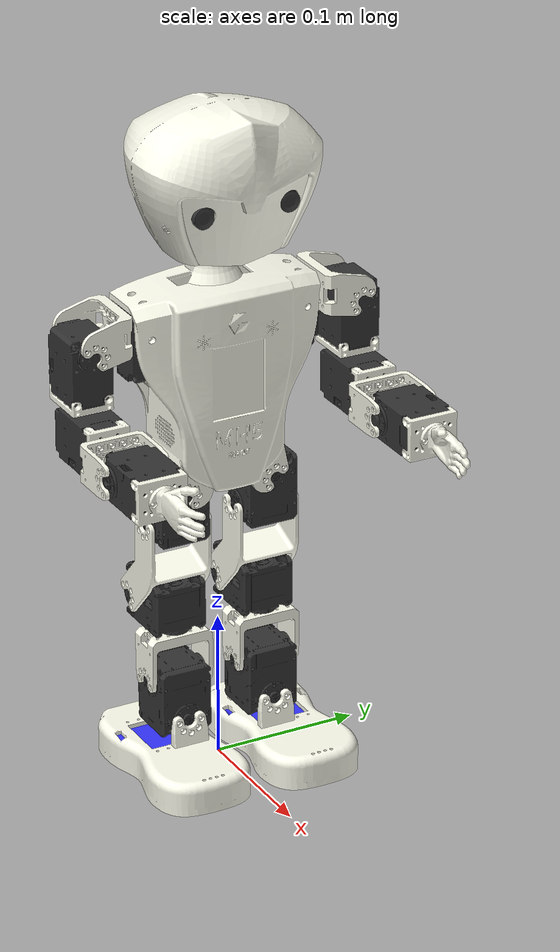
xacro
<?xml version="1.0" ?>
<robot xmlns:xacro="http://ros.org/wiki/xacro" name="mh5_robot">

    <xacro:include filename="$(find mh5_description)/urdf/mh5_head_revC.xacro"/>
    <xacro:include filename="$(find mh5_description)/urdf/mh5_arm_revE.xacro"/>
    <xacro:include filename="$(find mh5_description)/urdf/mh5_leg_revE.xacro"/>

    <xacro:macro name="material_ivory">
        <material name="ivory">
            <color rgba="1 1 0.94 1"/>
        </material>
    </xacro:macro>

    <xacro:macro name="material_black">
        <material name="black">
            <color rgba="0.2 0.2 0.2 1"/>
        </material>
    </xacro:macro>

    <link name="base_link"/>

    <link name="chest">
        <visual>
            <origin rpy="0 0 0" xyz="0 0 0"/>
            <geometry>
                <mesh filename="package://mh5_description/meshes/chest_revE.stl"/>
            </geometry>
            <xacro:material_ivory/>
        </visual>
        <collision>
            <origin rpy="0 0 0" xyz="0 0 0"/>
            <geometry>
                <mesh filename="package://mh5_description/meshes/chest_revE.stl"/>
            </geometry>
        </collision>
        <inertial>
            <mass value="0.139810"/>
            <inertia
                ixx="0.000416293"
                iyy="0.000348572"
                izz="0.000198378"
                ixy="0.000000012"
                ixz="0.000012260"
                iyz="0.000000017" />
        </inertial>
    </link>

    <joint name="chest_fixed" type="fixed">
        <parent link="base_link"/>
        <child link="chest"/>
        <origin xyz="0 0 0.203" rpy="0 0 0"/>
    </joint>

    <xacro:mh5_head parent="chest" />
    <xacro:mh5_arm side="left" parent="chest" />
    <xacro:mh5_arm side="right" parent="chest" />
    <xacro:mh5_leg side="left" parent="chest" />
    <xacro:mh5_leg side="right" parent="chest" />

    <gazebo>
        <plugin name="gazebo_ros_control" filename="libgazebo_ros_control.so">
            <robotNamespace>/mh5_robot</robotNamespace>
        </plugin>

    </gazebo>

</robot>

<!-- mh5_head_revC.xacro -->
<robot xmlns:xacro="http://ros.org/wiki/xacro">

    <xacro:include filename="$(find mh5_description)/urdf/mh5_transmission.xacro"/>

    <xacro:macro name="mh5_head" params="parent">

        <joint name="head_y" type="revolute">
            <axis xyz="-1 0 0"/>
            <parent link="${parent}"/>
            <child link="head_servo"/>
            <origin xyz="-0.007076 0 ${0.191046+0.019}" rpy="0 ${pi/2} 0"/>
            <limit lower="-${pi/2}" upper="${pi/2}" effort="1.0" velocity="${2*pi}"/>
        </joint>
        <xacro:insert_transmission name="head_y"/>

        <link name="head_servo">
            <visual>
                <origin rpy="0 0 0" xyz="0 0 0"/>
                <geometry>
                    <mesh filename="package://mh5_description/meshes/2XL430_1_idle_revC.stl"/>
                </geometry>
                <xacro:material_black/>
            </visual>
            <collision>
                <origin rpy="0 0 0" xyz="0 0 0"/>
                <geometry>
                    <mesh filename="package://mh5_description/meshes/2XL430_1_idle_revC.stl"/>
                </geometry>
            </collision>
            <inertial>
                <mass value="0.098"/>
                <inertia
                    ixx="0.000026983"
                    iyy="0.000026983"
                    izz="0.000019139"
                    ixy="0.000000654"
                    ixz="-0.000000001"
                    iyz="0.000000002" />
            </inertial>
        </link>

        <joint name="head_p" type="revolute">
            <axis xyz="0 -1 0"/>
            <parent link="head_servo"/>
            <child link="head_frame"/>
            <origin xyz="0 0 -0.024" rpy="0 -${pi/2} 0"/>
            <limit lower="-${pi/9}" upper="${pi/4}" effort="1.0" velocity="${2*pi}"/>
        </joint>
        <xacro:insert_transmission name="head_p"/>

        <link name="head_frame">
            <visual>
                <origin rpy="0 0 0" xyz="0 0 0"/>
                <geometry>
                    <mesh filename="package://mh5_description/meshes/head_revC.stl"/>
                </geometry>
                <xacro:material_ivory/>
            </visual>
            <collision>
                <origin rpy="0 0 0" xyz="0 0 0"/>
                <geometry>
                    <mesh filename="package://mh5_description/meshes/head_revC.stl"/>
                </geometry>
            </collision>
            <inertial>
                <mass value="0.090046"/>
                <inertia
                    ixx="0.000188152"
                    iyy="0.000158702"
                    izz="0.000215838"
                    ixy="0.000000008"
                    ixz="-0.000000404"
                    iyz="-0.000000005" />
            </inertial>
        </link>

        <joint name="left_camera_fixed" type="fixed">
            <parent link="head_frame"/>
            <child link="left_camera"/>
            <origin xyz="0.05715 0.030 -0.009196" rpy="0 0 0"/>
        </joint>

        <link name="left_camera">
            <visual>
                <origin rpy="0 0 0" xyz="0 0 0"/>
                <geometry>
                    <mesh filename="package://mh5_description/meshes/camera_revC.stl"/>
                </geometry>
                <xacro:material_black/>
            </visual>
            <collision>
                <origin rpy="0 0 0" xyz="0 0 0"/>
                <geometry>
                    <mesh filename="package://mh5_description/meshes/camera_revC.stl"/>
                </geometry>
            </collision>
            <inertial>
                <mass value="0.004582"/>
                <inertia
                    ixx="0.000000405"
                    iyy="0.000000374"
                    izz="0.000000314"
                    ixy="-0.000000001"
                    ixz="-0.000000034"
                    iyz="-0.000000003" />
            </inertial>
        </link>

        <joint name="right_camera_fixed" type="fixed">
            <parent link="head_frame"/>
            <child link="right_camera"/>
            <origin xyz="0.05715 -0.030 -0.009196" rpy="0 0 0"/>
        </joint>

        <link name="right_camera">
            <visual>
                <origin rpy="0 0 0" xyz="0 0 0"/>
                <geometry>
                    <mesh filename="package://mh5_description/meshes/camera_revC.stl"/>
                </geometry>
                <xacro:material_black/>
            </visual>
            <collision>
                <origin rpy="0 0 0" xyz="0 0 0"/>
                <geometry>
                    <mesh filename="package://mh5_description/meshes/camera_revC.stl"/>
                </geometry>
            </collision>
            <inertial>
                <mass value="0.004582"/>
                <inertia
                    ixx="0.000000405"
                    iyy="0.000000374"
                    izz="0.000000314"
                    ixy="-0.000000001"
                    ixz="-0.000000034"
                    iyz="-0.000000003" />
            </inertial>
        </link>

    </xacro:macro>

</robot>

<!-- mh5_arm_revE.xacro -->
<robot xmlns:xacro="http://ros.org/wiki/xacro">

    <xacro:macro name="mh5_arm" params="side parent">

        <xacro:property name="short_side" value="${side[0]}"/>
        <xacro:if value="${short_side == 'l'}">
            <xacro:property name="factor" value = "1.0"/>
        </xacro:if>
        <xacro:if value="${short_side == 'r'}">
            <xacro:property name="factor" value = "-1.0"/>
        </xacro:if>

        <xacro:property name="effort" value="1.0"/>
        <xacro:property name="velocity" value="${2*pi}"/>

        <joint name="${side}_shoulder_fixed" type="fixed">
            <parent link="${parent}"/>
            <child link="${side}_shoulder_servo"/>
            <origin xyz="0 ${factor*0.0495} 0.11875" rpy="0 0 ${factor*pi/2}"/>
        </joint>

        <link name="${side}_shoulder_servo">
            <visual>
                <origin rpy="0 0 0" xyz="0 0 0"/>
                <geometry>
                    <mesh filename="package://mh5_description/meshes/XL430_no_idle_revC.stl"/>
                </geometry>
                <xacro:material_black/>
            </visual>
            <collision>
                <origin rpy="0 0 0" xyz="0 0 0"/>
                <geometry>
                    <mesh filename="package://mh5_description/meshes/XL430_no_idle_revC.stl"/>
                </geometry>
            </collision>
            <inertial>
                <mass value="0.057"/>
                <inertia
                    ixx="0.000013720"
                    iyy="0.000015234"
                    izz="0.000008769"
                    ixy="0.000000007"
                    ixz="-0.000000355"
                    iyz="0.000000006" />
            </inertial>
        </link>

        <joint name="${short_side}_sho_p" type="revolute">
            <axis xyz="0 0 ${factor}"/>
            <parent link="${side}_shoulder_servo"/>
            <child link="${side}_shoulder_frame"/>
            <origin xyz="0.019 0 0" rpy="0 -${pi/2} 0"/>
            <limit lower="-${pi/2}" upper="${pi}" effort="${effort}" velocity="${velocity}"/>
        </joint>
        <xacro:insert_transmission name="${short_side}_sho_p"/>

        <link name="${side}_shoulder_frame">
            <visual>
                <origin rpy="0 0 0" xyz="0 0 0"/>
                <geometry>
                    <mesh filename="package://mh5_description/meshes/frame04_revE.stl"/>
                </geometry>
                <material name="ivory"/>
            </visual>
            <collision>
                <origin rpy="0 0 0" xyz="0 0 0"/>
                <geometry>
                    <mesh filename="package://mh5_description/meshes/frame04_revE.stl"/>
                </geometry>
            </collision>
            <inertial>
                <mass value="0.0083"/>
                <inertia
                    ixx="0.000003285"
                    iyy="0.000001666"
                    izz="0.000003578"
                    ixy="0.000000000"
                    ixz="-0.000000402"
                    iyz="0.000000000" />
            </inertial>
        </link>

        <joint name="${short_side}_sho_r" type="revolute">
            <axis xyz="${factor} 0 0"/>
            <parent link="${side}_shoulder_frame"/>
            <child link="${side}_arm_servo"/>
            <origin xyz="-0.008 0 -0.027" rpy="${-factor*pi/2} 0 ${-factor*pi/2}"/>
            <limit lower="0" upper="${pi}" effort="${effort}" velocity="${velocity}"/>
        </joint>
        <xacro:insert_transmission name="${short_side}_sho_r"/>

        <link name="${side}_arm_servo">
            <visual>
                <origin rpy="0 0 0" xyz="0 0 0"/>
                <geometry>
                    <mesh filename="package://mh5_description/meshes/XL430_idle_revC.stl"/>
                </geometry>
                <material name="black"/>
            </visual>
            <collision>
                <origin rpy="0 0 0" xyz="0 0 0"/>
                <geometry>
                    <mesh filename="package://mh5_description/meshes/XL430_idle_revC.stl"/>
                </geometry>
            </collision>
            <inertial>
                <mass value="0.057"/>
                <inertia
                    ixx="0.000013720"
                    iyy="0.000015234"
                    izz="0.000008769"
                    ixy="0.000000007"
                    ixz="-0.000000355"
                    iyz="0.000000006" />
            </inertial>
        </link>

        <joint name="${side}_arm_fixed" type="fixed">
            <parent link="${side}_arm_servo"/>
            <child link="${side}_arm_frame"/>
            <origin xyz="0 0 -0.03925" rpy="0 0 ${pi/2}"/>
        </joint>

        <link name="${side}_arm_frame">
            <visual>
                <origin rpy="0 0 0" xyz="0 0 0"/>
                <geometry>
                    <mesh filename="package://mh5_description/meshes/frame03_revC.stl"/>
                </geometry>
                <material name="ivory"/>
            </visual>
            <collision>
                <origin rpy="0 0 0" xyz="0 0 0"/>
                <geometry>
                    <mesh filename="package://mh5_description/meshes/frame03_revC.stl"/>
                </geometry>
            </collision>
            <inertial>
                <mass value="0.0028"/>
                <inertia
                    ixx="0.000000349"
                    iyy="0.000000241"
                    izz="0.000000567"
                    ixy="0"
                    ixz="0"
                    iyz="0" />
            </inertial>
        </link>

        <joint name="${short_side}_elb_y" type="revolute">
            <axis xyz="${factor} 0 0"/>
            <parent link="${side}_arm_frame"/>
            <child link="${side}_elbow_servo"/>
            <origin xyz="0 0 -0.019" rpy="0 -${pi/2} -${pi/2}"/>
            <limit lower="${-pi/2}" upper="${pi/2}" effort="${effort}" velocity="${velocity}"/>
        </joint>
        <xacro:insert_transmission name="${short_side}_elb_y"/>

        <link name="${side}_elbow_servo">
            <visual>
                <origin rpy="0 0 0" xyz="0 0 0"/>
                <geometry>
                    <mesh filename="package://mh5_description/meshes/XL430_no_idle_revC.stl"/>
                </geometry>
                <xacro:material_black/>
            </visual>
            <collision>
                <origin rpy="0 0 0" xyz="0 0 0"/>
                <geometry>
                    <mesh filename="package://mh5_description/meshes/XL430_no_idle_revC.stl"/>
                </geometry>
            </collision>
            <inertial>
                <mass value="0.057"/>
                <inertia
                    ixx="0.000013720"
                    iyy="0.000015234"
                    izz="0.000008769"
                    ixy="0.000000007"
                    ixz="-0.000000355"
                    iyz="0.000000006" />
            </inertial>
        </link>

        <joint name="${side}_lower_arm_fixed" type="fixed">
            <parent link="${side}_elbow_servo"/>
            <child link="${side}_lower_arm_frame"/>
            <origin xyz="0 0 0" rpy="0 0 0"/>
        </joint>

        <link name="${side}_lower_arm_frame">
            <visual>
                <origin rpy="0 0 0" xyz="0 0 -0.03925"/>
                <geometry>
                    <mesh filename="package://mh5_description/meshes/lower_arm.stl"/>
                </geometry>
                <material name="ivory"/>
            </visual>
            <collision>
                <origin rpy="0 0 0" xyz="0 0 -0.03925"/>
                <geometry>
                    <mesh filename="package://mh5_description/meshes/lower_arm.stl"/>
                </geometry>
            </collision>
            <inertial>
                <mass value="0.0011"/>
                <inertia
                    ixx="0.000003873"
                    iyy="0.000002140"
                    izz="0.000003349"
                    ixy="0.000000000"
                    ixz="0.000000004"
                    iyz="0.000000000" />
            </inertial>
        </link>

        <joint name="${short_side}_elb_p" type="revolute">
            <axis xyz="${factor} 0 0"/>
            <parent link="${side}_lower_arm_frame"/>
            <child link="${side}_lower_arm_servo"/>
            <origin xyz="0 0 -0.07325" rpy="0 0 ${-factor*pi/2}"/>
            <limit lower="${-0.6*pi}" upper="${0.6*pi}" effort="${effort}" velocity="${velocity}"/>
        </joint>
        <xacro:insert_transmission name="${short_side}_elb_p"/>

        <link name="${side}_lower_arm_servo">
            <visual>
                <origin rpy="0 0 0" xyz="0 0 0"/>
                <geometry>
                    <mesh filename="package://mh5_description/meshes/XL430_idle_revC.stl"/>
                </geometry>
                <material name="black"/>
            </visual>
            <collision>
                <origin rpy="0 0 0" xyz="0 0 0"/>
                <geometry>
                    <mesh filename="package://mh5_description/meshes/XL430_idle_revC.stl"/>
                </geometry>
            </collision>
            <inertial>
                <mass value="0.057"/>
                <inertia
                    ixx="0.000013720"
                    iyy="0.000015234"
                    izz="0.000008769"
                    ixy="0.000000007"
                    ixz="-0.000000355"
                    iyz="0.000000006" />
            </inertial>
        </link>

        <joint name="${side}_hand_fixed" type="fixed">
            <parent link="${side}_lower_arm_servo"/>
            <child link="${side}_hand"/>
            <origin xyz="0 0 -0.03925" rpy="0 0 ${factor*pi/2}"/>
        </joint>

        <xacro:if value="${short_side == 'l'}">
            <xacro:property name="hand_stl" value = "package://mh5_description/meshes/left_hand_revB.stl"/>
        </xacro:if>
        <xacro:if value="${short_side == 'r'}">
            <xacro:property name="hand_stl" value = "package://mh5_description/meshes/right_hand_revB.stl"/>
        </xacro:if>

        <link name="${side}_hand">
            <visual>
                <origin rpy="0 0 0" xyz="0 0 0"/>
                <geometry>
                    <mesh filename="${hand_stl}"/>
                </geometry>
                <material name="ivory"/>
            </visual>
            <collision>
                <origin rpy="0 0 0" xyz="0 0 0"/>
                <geometry>
                    <mesh filename="${hand_stl}"/>
                </geometry>
            </collision>
            <inertial>
                <mass value="0.0096"/>
                <inertia
                    ixx="0.000002177"
                    iyy="0.000002288"
                    izz="0.000000936"
                    ixy="${factor*0.000000053}"
                    ixz="0.000000020"
                    iyz="${factor*-0.000000052}" />
            </inertial>
        </link>

    </xacro:macro>

</robot>

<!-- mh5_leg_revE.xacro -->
<robot xmlns:xacro="http://ros.org/wiki/xacro">

    <xacro:include filename="$(find mh5_description)/urdf/mh5_transmission.xacro"/>

    <xacro:macro name="mh5_leg" params="side parent">

        <xacro:property name="short_side" value="${side[0]}"/>
        <xacro:if value="${short_side == 'l'}">
            <xacro:property name="factor" value = "1.0"/>
        </xacro:if>
        <xacro:if value="${short_side == 'r'}">
            <xacro:property name="factor" value = "-1.0"/>
        </xacro:if>

        <xacro:property name="effort" value="1000.0"/>
        <xacro:property name="velocity" value="${2*pi}"/>
        <xacro:property name="damping" value="0.1"/>
        <xacro:property name="friction" value="0.0"/>

        <joint name="${short_side}_hip_r" type="revolute">
            <parent link="${parent}"/>
            <child link="${side}_hip_servo"/>
            <axis xyz="${factor} 0 0"/>
            <origin xyz="0 ${factor*0.032} 0" rpy="0 0 0"/>
            <limit lower="-${pi/4}" upper="${3*pi/4}" effort="${effort}" velocity="${velocity}"/>
            <dynamics damping="${damping}" friction="${friction}" />
        </joint>
        <xacro:insert_transmission name="${short_side}_hip_r"/>

        <link name="${side}_hip_servo">
            <visual>
                <origin rpy="0 0 0" xyz="0 0 0"/>
                <geometry>
                    <mesh filename="package://mh5_description/meshes/2XL430_2_idles_revC.stl"/>
                </geometry>
                <xacro:material_black/>
            </visual>
            <collision>
                <origin rpy="0 0 0" xyz="0 0 0"/>
                <geometry>
                    <mesh filename="package://mh5_description/meshes/2XL430_2_idles_revC.stl"/>
                </geometry>
            </collision>
            <inertial>
                <mass value="0.098"/>
                <inertia
                    ixx="0.000026983"
                    iyy="0.000026983"
                    izz="0.000019139"
                    ixy="0.000000654"
                    ixz="-0.000000002"
                    iyz="0.000000001" />
            </inertial>
        </link>

        <joint name="${short_side}_hip_p" type="revolute">
            <parent link="${side}_hip_servo"/>
            <child link="${side}_thigh"/>
            <axis xyz="0 -1 0"/>
            <origin xyz="0 0 -0.024" rpy="0 0 0"/>
            <limit lower="-${0.6*pi}" upper="${0.6*pi}" effort="${effort}" velocity="${velocity}"/>
            <dynamics damping="${damping}" friction="${friction}" />
        </joint>
        <xacro:insert_transmission name="${short_side}_hip_p"/>

        <link name="${side}_thigh">
            <visual>
                <origin rpy="0 0 0" xyz="0 0 0"/>
                <geometry>
                    <mesh filename="package://mh5_description/meshes/thigh_revE.stl"/>
                </geometry>
                <xacro:material_ivory/>
            </visual>
            <collision>
                <origin rpy="0 0 0" xyz="0 0 0"/>
                <geometry>
                    <mesh filename="package://mh5_description/meshes/thigh_revE.stl"/>
                </geometry>
            </collision>
            <inertial>
                <mass value="0.016"/>
                <inertia
                    ixx="0.000008595"
                    iyy="0.000005236"
                    izz="0.000006459"
                    ixy="0.000000000"
                    ixz="-0.000000869"
                    iyz="0.000000000" />
            </inertial>
        </link>

       <joint name="${short_side}_kne_p" type="revolute">
            <parent link="${side}_thigh"/>
            <child link="${side}_knee_servo"/>
            <axis xyz="0 1 0"/>
            <origin xyz="-0.024 0 -0.061" rpy="0 ${pi/2} 0"/>
            <limit lower="0" upper="${1.2*pi}" effort="${effort}" velocity="${velocity}"/>
            <dynamics damping="${damping}" friction="${friction}" />
        </joint>
        <xacro:insert_transmission name="${short_side}_kne_p"/>

        <link name="${side}_knee_servo">
            <visual>
                <origin rpy="0 0 0" xyz="0 0 0.024"/>
                <geometry>
                    <mesh filename="package://mh5_description/meshes/2XL430_1_idle_revC.stl"/>
                </geometry>
                <xacro:material_black/>
            </visual>
            <collision>
                <origin rpy="0 0 0" xyz="0 0 0.024"/>
                <geometry>
                    <mesh filename="package://mh5_description/meshes/2XL430_1_idle_revC.stl"/>
                </geometry>
            </collision>
            <inertial>
                <mass value="0.098"/>
                <inertia
                    ixx="0.000026983"
                    iyy="0.000026983"
                    izz="0.000019139"
                    ixy="0.000000654"
                    ixz="-0.000000001"
                    iyz="0.000000002" />
            </inertial>
        </link>

        <joint name="${short_side}_kne_y" type="revolute">
            <parent link="${side}_knee_servo"/>
            <child link="${side}_tibia"/>
            <axis xyz="0 0 ${factor}"/>
            <origin xyz="0.019 0 0.024" rpy="0 -${pi/2} 0"/>
            <limit lower="-${pi/4}" upper="${pi/4}" effort="${effort}" velocity="${velocity}"/>
            <dynamics damping="${damping}" friction="${friction}" />
        </joint>
        <xacro:insert_transmission name="${short_side}_kne_y"/>

        <link name="${side}_tibia">
            <visual>
                <origin rpy="0 0 0" xyz="0 0 0"/>
                <geometry>
                    <mesh filename="package://mh5_description/meshes/frame02_revC.stl"/>
                </geometry>
                <xacro:material_ivory/>
            </visual>
            <collision>
                <origin rpy="0 0 0" xyz="0 0 0"/>
                <geometry>
                    <mesh filename="package://mh5_description/meshes/frame02_revC.stl"/>
                </geometry>
            </collision>
            <inertial>
                <origin rpy="0 0 0" xyz="0 0 0"/>
                <mass value="0.0077"/>
                <inertia
                    ixx="0.000003217"
                    iyy="0.000001377"
                    izz="0.000002781"
                    ixy="0.000000000"
                    ixz="-0.000000011"
                    iyz="0.000000000" />
            </inertial>
        </link>

        <joint name="${short_side}_ank_p" type="revolute">
            <parent link="${side}_tibia"/>
            <child link="${side}_ankle_servo"/>
            <axis xyz="1 0 0"/>
            <origin xyz="0 0 -0.034" rpy="0 0 -${pi/2}"/>
            <limit lower="-${pi/2}" upper="${0.64*pi}" effort="${effort}" velocity="${velocity}"/>
            <dynamics damping="${damping}" friction="${friction}" />
        </joint>
        <xacro:insert_transmission name="${short_side}_ank_p"/>

        <link name="${side}_ankle_servo">
            <visual>
                <origin rpy="0 0 0" xyz="0 0 0"/>
                <geometry>
                    <mesh filename="package://mh5_description/meshes/2XL430_2_idles_revC.stl"/>
                </geometry>
                <xacro:material_black/>
            </visual>
            <collision>
                <origin rpy="0 0 0" xyz="0 0 0"/>
                <geometry>
                    <mesh filename="package://mh5_description/meshes/2XL430_2_idles_revC.stl"/>
                </geometry>
            </collision>
            <inertial>
                <mass value="0.098"/>
                <inertia
                    ixx="0.000026983"
                    iyy="0.000026983"
                    izz="0.000019139"
                    ixy="0.000000654"
                    ixz="-0.000000002"
                    iyz="0.000000001" />
            </inertial>
        </link>

        <joint name="${short_side}_ank_r" type="revolute">
            <parent link="${side}_ankle_servo"/>
            <child link="${side}_foot"/>
            <axis xyz="${factor} 0 0"/>
            <origin xyz="0 0 -0.024" rpy="0 0 ${pi/2}"/>
            <limit lower="-${pi/2}" upper="${pi/2}" effort="${effort}" velocity="${velocity}"/>
            <dynamics damping="${damping}" friction="${friction}" />
        </joint>
        <xacro:insert_transmission name="${short_side}_ank_r"/>

        <link name="${side}_foot">
            <visual>
                <origin rpy="0 0 0" xyz="0 0 0"/>
                <geometry>
                    <mesh filename="package://mh5_description/meshes/foot_${side}_revE.stl"/>
                </geometry>
                <xacro:material_ivory/>
            </visual>
            <collision>
                <origin rpy="0 0 0" xyz="0 0 0"/>
                <geometry>
                    <mesh filename="package://mh5_description/meshes/foot_${side}_revE.stl"/>
                </geometry>
            </collision>
            <inertial>
                <origin rpy="0 0 0" xyz="0 0 0"/>
                <mass value="0.053"/>
                <inertia
                    ixx="0.000027639"
                    iyy="0.000067044"
                    izz="0.000083497"
                    ixy="-0.000000056"
                    ixz="0.000001332"
                    iyz="0.0000000012" />
            </inertial>
        </link>

        <joint name="${side}_battery_fixed" type="fixed">
            <parent link="${side}_foot"/>
            <child link="${side}_battery"/>
            <origin xyz="0.015 ${factor*0.009} -0.037" rpy="0 0 0"/>
        </joint>

        <link name="${side}_battery">
            <visual>
                <origin rpy="0 0 0" xyz="0 0 0"/>
                <geometry>
                    <mesh filename="package://mh5_description/meshes/battery_revC.stl"/>
                </geometry>
                <material name="blue">
                    <color rgba="0.2 0.2 1.0 1"/>
                </material>
            </visual>
            <collision>
                <origin rpy="0 0 0" xyz="0 0 0"/>
                <geometry>
                    <mesh filename="package://mh5_description/meshes/battery_revC.stl"/>
                </geometry>
            </collision>
            <inertial>
                <origin rpy="0 0 0" xyz="0 0 0"/>
                <mass value="0.155"/>
                <inertia
                    ixx="0.000034376"
                    iyy="0.000144254"
                    izz="0.000173658"
                    ixy="0.000000000"
                    ixz="0.000000000"
                    iyz="0.000000000" />
            </inertial>
        </link>

        <joint name="${side}_sole_fixed" type="fixed">
            <parent link="${side}_foot"/>
            <child link="${side}_landing"/>
            <origin xyz="0.0 0.0 -0.03825" rpy="0 0 0"/>
        </joint>

        <link name="${side}_landing" />

    </xacro:macro>

</robot>
